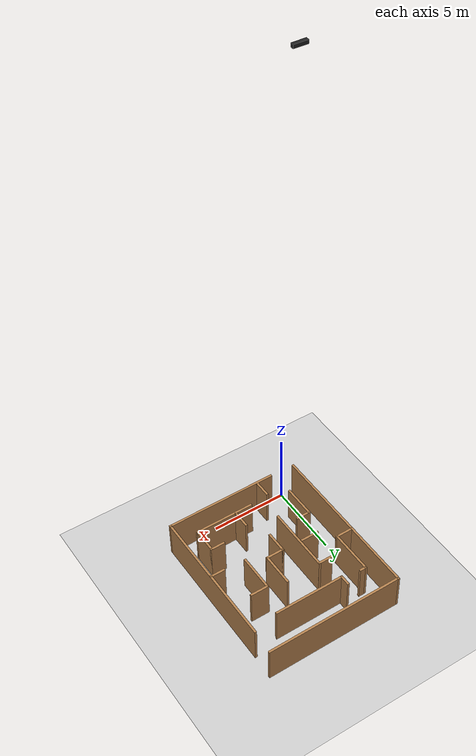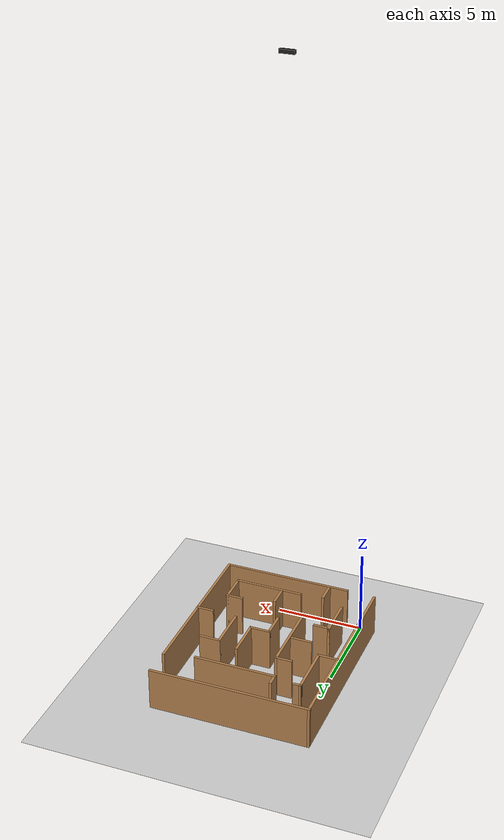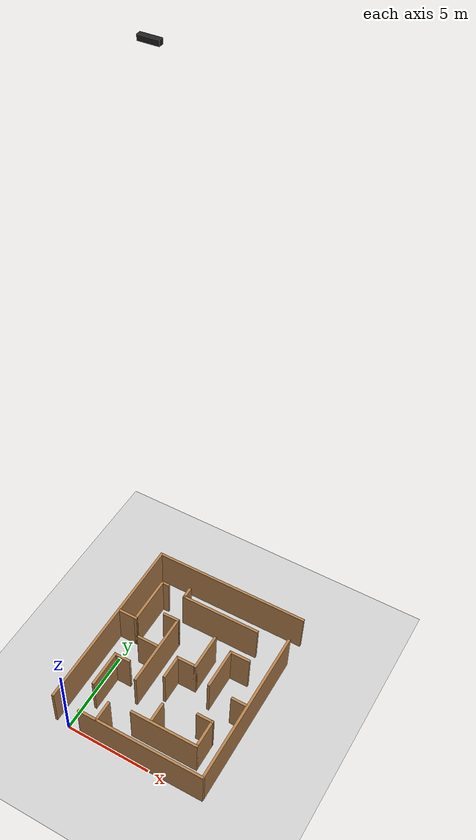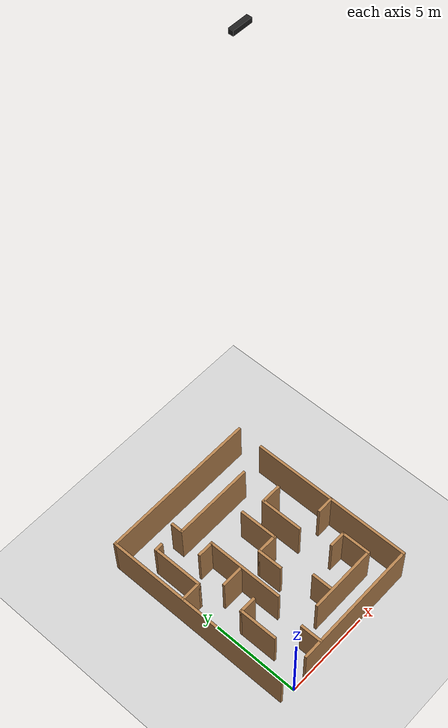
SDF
<sdf version="1.7">
 <world name="default">
  <light name="sun" type="directional">
   <pose>0 0 10 0 -0 0</pose>
   <diffuse>0.8 0.8 0.8 1</diffuse>
   <specular>0.2 0.2 0.2 1</specular>
   <attenuation>
    <range>1000</range>
    <constant>0.9</constant>
    <linear>0.01</linear>
    <quadratic>0.001</quadratic>
   </attenuation>
   <direction>-0.5 0.1 -0.9</direction>
   <spot><inner_angle>0</inner_angle><outer_angle>0</outer_angle><falloff>0</falloff></spot>
  </light>
  <model name="ground_plane">
   <static>1</static>
   <link name="link">
    <collision name="collision">
     <geometry><plane><normal>0 0 1</normal><size>100 100</size></plane></geometry>
     <surface><friction><ode><mu>100</mu><mu2>50</mu2></ode></friction></surface>
    </collision>
    <visual name="visual">
     <cast_shadows>0</cast_shadows>
     <geometry><plane><normal>0 0 1</normal><size>100 100</size></plane></geometry>
     <material>
      <script><uri>file://media/materials/scripts/gazebo.material</uri><name>Gazebo/Grey</name></script>
     </material>
    </visual>
   </link>
  </model>
  <gravity>0 0 -9.8</gravity>
  <magnetic_field>6e-06 2.3e-05 -4.2e-05</magnetic_field>
  <atmosphere type="adiabatic"/>
  <physics type="ode">
   <max_step_size>0.001</max_step_size>
   <real_time_factor>1</real_time_factor>
   <real_time_update_rate>1000</real_time_update_rate>
  </physics>
  <scene><ambient>0.4 0.4 0.4 1</ambient><background>0.7 0.7 0.7 1</background><shadows>1</shadows></scene>
  <spherical_coordinates>
   <surface_model>EARTH_WGS84</surface_model>
   <latitude_deg>0</latitude_deg>
   <longitude_deg>0</longitude_deg>
   <elevation>0</elevation>
   <heading_deg>0</heading_deg>
  </spherical_coordinates>
  <model name="obstacle_course_4">
   <pose>3.70375 5.52729 0 0 -0 1.57437</pose>
   <link name="Wall_0">
    <collision name="Wall_0_Collision">
     <geometry><box><size>7.5 0.15 2.5</size></box></geometry>
     <pose>0 0 1.25 0 -0 0</pose>
    </collision>
    <visual name="Wall_0_Visual">
     <pose>0 0 1.25 0 -0 0</pose>
     <geometry><box><size>7.5 0.15 2.5</size></box></geometry>
     <material>
      <script><uri>file://media/materials/scripts/gazebo.material</uri><name>Gazebo/Wood</name></script>
      <ambient>0.807843 0.360784 0 1</ambient>
     </material>
     <meta><layer>0</layer></meta>
    </visual>
    <pose>-5.47439 -0.809214 0 0 -0 -1.5708</pose>
   </link>
   <link name="Wall_1">
    <collision name="Wall_1_Collision">
     <geometry><box><size>9.5 0.15 2.5</size></box></geometry>
     <pose>0 0 1.25 0 -0 0</pose>
    </collision>
    <visual name="Wall_1_Visual">
     <pose>0 0 1.25 0 -0 0</pose>
     <geometry><box><size>9.5 0.15 2.5</size></box></geometry>
     <material>
      <script><uri>file://media/materials/scripts/gazebo.material</uri><name>Gazebo/Wood</name></script>
      <ambient>0.996078 0.47451 0.0196078 1</ambient>
     </material>
     <meta><layer>0</layer></meta>
    </visual>
    <pose>-0.79939 -4.48421 0 0 -0 0</pose>
   </link>
   <link name="Wall_15">
    <collision name="Wall_15_Collision">
     <geometry><box><size>4 0.15 2.5</size></box></geometry>
     <pose>0 0 1.25 0 -0 0</pose>
    </collision>
    <visual name="Wall_15_Visual">
     <pose>0 0 1.25 0 -0 0</pose>
     <geometry><box><size>4 0.15 2.5</size></box></geometry>
     <material>
      <script><uri>file://media/materials/scripts/gazebo.material</uri><name>Gazebo/Wood</name></script>
      <ambient>0.807843 0.360784 0 1</ambient>
     </material>
     <meta><layer>0</layer></meta>
    </visual>
    <pose>-4.14515 -1.43786 0 0 -0 -1.5708</pose>
   </link>
   <link name="Wall_16">
    <collision name="Wall_16_Collision">
     <geometry><box><size>1.75 0.15 2.5</size></box></geometry>
     <pose>0 0 1.25 0 -0 0</pose>
    </collision>
    <visual name="Wall_16_Visual">
     <pose>0 0 1.25 0 -0 0</pose>
     <geometry><box><size>1.75 0.15 2.5</size></box></geometry>
     <material>
      <script><uri>file://media/materials/scripts/gazebo.material</uri><name>Gazebo/Wood</name></script>
      <ambient>0.996078 0.47451 0.0196078 1</ambient>
     </material>
     <meta><layer>0</layer></meta>
    </visual>
    <pose>-3.34515 -3.36286 0 0 -0 0</pose>
   </link>
   <link name="Wall_17">
    <collision name="Wall_17_Collision">
     <geometry><box><size>1 0.15 2.5</size></box></geometry>
     <pose>0 0 1.25 0 -0 0</pose>
    </collision>
    <visual name="Wall_17_Visual">
     <pose>0 0 1.25 0 -0 0</pose>
     <geometry><box><size>1 0.15 2.5</size></box></geometry>
     <material>
      <script><uri>file://media/materials/scripts/gazebo.material</uri><name>Gazebo/Wood</name></script>
      <ambient>0.996078 0.47451 0.0196078 1</ambient>
     </material>
     <meta><layer>0</layer></meta>
    </visual>
    <pose>-2.54515 -2.93786 0 0 -0 1.5708</pose>
   </link>
   <link name="Wall_19">
    <collision name="Wall_19_Collision">
     <geometry><box><size>2.5 0.15 2.5</size></box></geometry>
     <pose>0 0 1.25 0 -0 0</pose>
    </collision>
    <visual name="Wall_19_Visual">
     <pose>0 0 1.25 0 -0 0</pose>
     <geometry><box><size>2.5 0.15 2.5</size></box></geometry>
     <material>
      <script><uri>file://media/materials/scripts/gazebo.material</uri><name>Gazebo/Wood</name></script>
      <ambient>0.996078 0.47451 0.0196078 1</ambient>
     </material>
     <meta><layer>0</layer></meta>
    </visual>
    <pose>0.457907 -2.13637 0 0 -0 0</pose>
   </link>
   <link name="Wall_20">
    <collision name="Wall_20_Collision">
     <geometry><box><size>1.25 0.15 2.5</size></box></geometry>
     <pose>0 0 1.25 0 -0 0</pose>
    </collision>
    <visual name="Wall_20_Visual">
     <pose>0 0 1.25 0 -0 0</pose>
     <geometry><box><size>1.25 0.15 2.5</size></box></geometry>
     <material>
      <script><uri>file://media/materials/scripts/gazebo.material</uri><name>Gazebo/Wood</name></script>
      <ambient>0.996078 0.47451 0.0196078 1</ambient>
     </material>
     <meta><layer>0</layer></meta>
    </visual>
    <pose>1.63291 -2.68637 0 0 -0 -1.5708</pose>
   </link>
   <link name="Wall_22">
    <collision name="Wall_22_Collision">
     <geometry><box><size>4.5 0.15 2.5</size></box></geometry>
     <pose>0 0 1.25 0 -0 0</pose>
    </collision>
    <visual name="Wall_22_Visual">
     <pose>0 0 1.25 0 -0 0</pose>
     <geometry><box><size>4.5 0.15 2.5</size></box></geometry>
     <material>
      <script><uri>file://media/materials/scripts/gazebo.material</uri><name>Gazebo/Wood</name></script>
      <ambient>0.996078 0.47451 0.0196078 1</ambient>
     </material>
     <meta><layer>0</layer></meta>
    </visual>
    <pose>-0.221138 1.36164 0 0 -0 0</pose>
   </link>
   <link name="Wall_23">
    <collision name="Wall_23_Collision">
     <geometry><box><size>1 0.15 2.5</size></box></geometry>
     <pose>0 0 1.25 0 -0 0</pose>
    </collision>
    <visual name="Wall_23_Visual">
     <pose>0 0 1.25 0 -0 0</pose>
     <geometry><box><size>1 0.15 2.5</size></box></geometry>
     <material>
      <script><uri>file://media/materials/scripts/gazebo.material</uri><name>Gazebo/Wood</name></script>
      <ambient>0.996078 0.47451 0.0196078 1</ambient>
     </material>
     <meta><layer>0</layer></meta>
    </visual>
    <pose>1.95386 1.78664 0 0 -0 1.5708</pose>
   </link>
   <link name="Wall_25">
    <collision name="Wall_25_Collision">
     <geometry><box><size>1.25 0.15 2.5</size></box></geometry>
     <pose>0 0 1.25 0 -0 0</pose>
    </collision>
    <visual name="Wall_25_Visual">
     <pose>0 0 1.25 0 -0 0</pose>
     <geometry><box><size>1.25 0.15 2.5</size></box></geometry>
     <material>
      <script><uri>file://media/materials/scripts/gazebo.material</uri><name>Gazebo/Wood</name></script>
      <ambient>0.807843 0.360784 0 1</ambient>
     </material>
     <meta><layer>0</layer></meta>
    </visual>
    <pose>-4.88941 1.81638 0 0 -0 0</pose>
   </link>
   <link name="Wall_3">
    <collision name="Wall_3_Collision">
     <geometry><box><size>9.25 0.15 2.5</size></box></geometry>
     <pose>0 0 1.25 0 -0 0</pose>
    </collision>
    <visual name="Wall_3_Visual">
     <pose>0 0 1.25 0 -0 0</pose>
     <geometry><box><size>9.25 0.15 2.5</size></box></geometry>
     <material>
      <script><uri>file://media/materials/scripts/gazebo.material</uri><name>Gazebo/Wood</name></script>
      <ambient>0.807843 0.360784 0 1</ambient>
     </material>
     <meta><layer>0</layer></meta>
    </visual>
    <pose>5.47439 0 0 0 -0 1.5708</pose>
   </link>
   <link name="Wall_35">
    <collision name="Wall_35_Collision">
     <geometry><box><size>1 0.15 2.5</size></box></geometry>
     <pose>0 0 1.25 0 -0 0</pose>
    </collision>
    <visual name="Wall_35_Visual">
     <pose>0 0 1.25 0 -0 0</pose>
     <geometry><box><size>1 0.15 2.5</size></box></geometry>
     <material>
      <script><uri>file://media/materials/scripts/gazebo.material</uri><name>Gazebo/Wood</name></script>
      <ambient>0.996078 0.47451 0.0196078 1</ambient>
     </material>
     <meta><layer>0</layer></meta>
    </visual>
    <pose>-0.822033 -4.02006 0 0 -0 1.5708</pose>
   </link>
   <link name="Wall_4">
    <collision name="Wall_4_Collision">
     <geometry><box><size>11 0.15 2.5</size></box></geometry>
     <pose>0 0 1.25 0 -0 0</pose>
    </collision>
    <visual name="Wall_4_Visual">
     <pose>0 0 1.25 0 -0 0</pose>
     <geometry><box><size>11 0.15 2.5</size></box></geometry>
     <material>
      <script><uri>file://media/materials/scripts/gazebo.material</uri><name>Gazebo/Wood</name></script>
      <ambient>0.807843 0.360784 0 1</ambient>
     </material>
     <meta><layer>0</layer></meta>
    </visual>
    <pose>0.049389 4.55 0 0 -0 3.14159</pose>
   </link>
   <link name="Wall_44">
    <collision name="Wall_44_Collision">
     <geometry><box><size>2.25 0.15 2.5</size></box></geometry>
     <pose>0 0 1.25 0 -0 0</pose>
    </collision>
    <visual name="Wall_44_Visual">
     <pose>0 0 1.25 0 -0 0</pose>
     <geometry><box><size>2.25 0.15 2.5</size></box></geometry>
     <material>
      <script><uri>file://media/materials/scripts/gazebo.material</uri><name>Gazebo/Wood</name></script>
      <ambient>0.996078 0.47451 0.0196078 1</ambient>
     </material>
     <meta><layer>0</layer></meta>
    </visual>
    <pose>-2.67538 3.13515 0 0 -0 0</pose>
   </link>
   <link name="Wall_45">
    <collision name="Wall_45_Collision">
     <geometry><box><size>1 0.15 2.5</size></box></geometry>
     <pose>0 0 1.25 0 -0 0</pose>
    </collision>
    <visual name="Wall_45_Visual">
     <pose>0 0 1.25 0 -0 0</pose>
     <geometry><box><size>1 0.15 2.5</size></box></geometry>
     <material>
      <script><uri>file://media/materials/scripts/gazebo.material</uri><name>Gazebo/Wood</name></script>
      <ambient>0.996078 0.47451 0.0196078 1</ambient>
     </material>
     <meta><layer>0</layer></meta>
    </visual>
    <pose>-1.62538 2.71015 0 0 -0 -1.5708</pose>
   </link>
   <link name="Wall_53">
    <collision name="Wall_53_Collision">
     <geometry><box><size>1.25 0.15 2.5</size></box></geometry>
     <pose>0 0 1.25 0 -0 0</pose>
    </collision>
    <visual name="Wall_53_Visual">
     <pose>0 0 1.25 0 -0 0</pose>
     <geometry><box><size>1.25 0.15 2.5</size></box></geometry>
     <material>
      <script><uri>file://media/materials/scripts/gazebo.material</uri><name>Gazebo/Wood</name></script>
      <ambient>0.996078 0.47451 0.0196078 1</ambient>
     </material>
     <meta><layer>0</layer></meta>
    </visual>
    <pose>-3.52519 -0.632226 0 0 -0 0</pose>
   </link>
   <link name="Wall_59">
    <collision name="Wall_59_Collision">
     <geometry><box><size>1.25 0.15 2.5</size></box></geometry>
     <pose>0 0 1.25 0 -0 0</pose>
    </collision>
    <visual name="Wall_59_Visual">
     <pose>0 0 1.25 0 -0 0</pose>
     <geometry><box><size>1.25 0.15 2.5</size></box></geometry>
     <material>
      <script><uri>file://media/materials/scripts/gazebo.material</uri><name>Gazebo/Wood</name></script>
      <ambient>0.807843 0.360784 0 1</ambient>
     </material>
     <meta><layer>0</layer></meta>
    </visual>
    <pose>0.907563 3.98814 0 0 -0 -1.5708</pose>
   </link>
   <link name="Wall_6">
    <collision name="Wall_6_Collision">
     <geometry><box><size>4.75 0.15 2.5</size></box></geometry>
     <pose>0 0 1.25 0 -0 0</pose>
    </collision>
    <visual name="Wall_6_Visual">
     <pose>0 0 1.25 0 -0 0</pose>
     <geometry><box><size>4.75 0.15 2.5</size></box></geometry>
     <material>
      <script><uri>file://media/materials/scripts/gazebo.material</uri><name>Gazebo/Wood</name></script>
      <ambient>0.996078 0.47451 0.0196078 1</ambient>
     </material>
     <meta><layer>0</layer></meta>
    </visual>
    <pose>3.5155 -0.431034 0 0 -0 1.5708</pose>
   </link>
   <link name="Wall_60">
    <collision name="Wall_60_Collision">
     <geometry><box><size>3 0.15 2.5</size></box></geometry>
     <pose>0 0 1.25 0 -0 0</pose>
    </collision>
    <visual name="Wall_60_Visual">
     <pose>0 0 1.25 0 -0 0</pose>
     <geometry><box><size>3 0.15 2.5</size></box></geometry>
     <material>
      <script><uri>file://media/materials/scripts/gazebo.material</uri><name>Gazebo/Wood</name></script>
      <ambient>0.996078 0.47451 0.0196078 1</ambient>
     </material>
     <meta><layer>0</layer></meta>
    </visual>
    <pose>2.33256 3.43814 0 0 -0 0</pose>
   </link>
   <link name="Wall_61">
    <collision name="Wall_61_Collision">
     <geometry><box><size>0.5 0.15 2.5</size></box></geometry>
     <pose>0 0 1.25 0 -0 0</pose>
    </collision>
    <visual name="Wall_61_Visual">
     <pose>0 0 1.25 0 -0 0</pose>
     <geometry><box><size>0.5 0.15 2.5</size></box></geometry>
     <material>
      <script><uri>file://media/materials/scripts/gazebo.material</uri><name>Gazebo/Wood</name></script>
      <ambient>0.996078 0.47451 0.0196078 1</ambient>
     </material>
     <meta><layer>0</layer></meta>
    </visual>
    <pose>3.75756 3.26314 0 0 -0 -1.5708</pose>
   </link>
   <link name="Wall_67">
    <collision name="Wall_67_Collision">
     <geometry><box><size>1.25 0.15 2.5</size></box></geometry>
     <pose>0 0 1.25 0 -0 0</pose>
    </collision>
    <visual name="Wall_67_Visual">
     <pose>0 0 1.25 0 -0 0</pose>
     <geometry><box><size>1.25 0.15 2.5</size></box></geometry>
     <material>
      <script><uri>file://media/materials/scripts/gazebo.material</uri><name>Gazebo/Wood</name></script>
      <ambient>0.996078 0.47451 0.0196078 1</ambient>
     </material>
     <meta><layer>0</layer></meta>
    </visual>
    <pose>-0.050044 2.07345 0 0 -0 1.5708</pose>
   </link>
   <link name="Wall_7">
    <collision name="Wall_7_Collision">
     <geometry><box><size>0.75 0.15 2.5</size></box></geometry>
     <pose>0 0 1.25 0 -0 0</pose>
    </collision>
    <visual name="Wall_7_Visual">
     <pose>0 0 1.25 0 -0 0</pose>
     <geometry><box><size>0.75 0.15 2.5</size></box></geometry>
     <material>
      <script><uri>file://media/materials/scripts/gazebo.material</uri><name>Gazebo/Wood</name></script>
      <ambient>0.996078 0.47451 0.0196078 1</ambient>
     </material>
     <meta><layer>0</layer></meta>
    </visual>
    <pose>3.8155 1.86897 0 0 -0 0</pose>
   </link>
   <link name="Wall_70">
    <collision name="Wall_70_Collision">
     <geometry><box><size>1.5 0.15 2.5</size></box></geometry>
     <pose>0 0 1.25 0 -0 0</pose>
    </collision>
    <visual name="Wall_70_Visual">
     <pose>0 0 1.25 0 -0 0</pose>
     <geometry><box><size>1.5 0.15 2.5</size></box></geometry>
     <material>
      <script><uri>file://media/materials/scripts/gazebo.material</uri><name>Gazebo/Wood</name></script>
      <ambient>0.996078 0.47451 0.0196078 1</ambient>
     </material>
     <meta><layer>0</layer></meta>
    </visual>
    <pose>-0.793722 0.140242 0 0 -0 0</pose>
   </link>
   <link name="Wall_71">
    <collision name="Wall_71_Collision">
     <geometry><box><size>1.25 0.15 2.5</size></box></geometry>
     <pose>0 0 1.25 0 -0 0</pose>
    </collision>
    <visual name="Wall_71_Visual">
     <pose>0 0 1.25 0 -0 0</pose>
     <geometry><box><size>1.25 0.15 2.5</size></box></geometry>
     <material>
      <script><uri>file://media/materials/scripts/gazebo.material</uri><name>Gazebo/Wood</name></script>
      <ambient>0.996078 0.47451 0.0196078 1</ambient>
     </material>
     <meta><layer>0</layer></meta>
    </visual>
    <pose>-0.118722 -0.409758 0 0 -0 -1.5708</pose>
   </link>
   <link name="Wall_72">
    <collision name="Wall_72_Collision">
     <geometry><box><size>2.25 0.15 2.5</size></box></geometry>
     <pose>0 0 1.25 0 -0 0</pose>
    </collision>
    <visual name="Wall_72_Visual">
     <pose>0 0 1.25 0 -0 0</pose>
     <geometry><box><size>2.25 0.15 2.5</size></box></geometry>
     <material>
      <script><uri>file://media/materials/scripts/gazebo.material</uri><name>Gazebo/Wood</name></script>
      <ambient>0.996078 0.47451 0.0196078 1</ambient>
     </material>
     <meta><layer>0</layer></meta>
    </visual>
    <pose>0.931278 -0.959758 0 0 -0 0</pose>
   </link>
   <static>1</static>
  </model>
  <model name="overhead_camera">
   <link name="link_0">
    <inertial>
     <mass>1</mass>
     <inertia>
      <ixx>0.166667</ixx>
      <ixy>0</ixy>
      <ixz>0</ixz>
      <iyy>0.166667</iyy>
      <iyz>0</iyz>
      <izz>0.166667</izz>
     </inertia>
    </inertial>
    <pose>0 2e-06 4.4e-05 0 -0 0</pose>
    <visual name="visual">
     <geometry><box><size>0.8 0.2 0.2</size></box></geometry>
     <material>
      <lighting>1</lighting>
      <script><uri>file://media/materials/scripts/gazebo.material</uri><name>Gazebo/Black</name></script>
      <shader type="pixel"><normal_map>__default__</normal_map></shader>
      <ambient>0.3 0.3 0.3 1</ambient>
      <diffuse>0.7 0.7 0.7 1</diffuse>
      <specular>0.01 0.01 0.01 1</specular>
      <emissive>0 0 0 1</emissive>
     </material>
     <cast_shadows>0</cast_shadows>
    </visual>
    <collision name="collision">
     <geometry><box><size>0.8 0.2 0.2</size></box></geometry>
     <surface>
      <friction>
       <ode><mu>1</mu><mu2>1</mu2><fdir1>0 0 0</fdir1><slip1>0</slip1><slip2>0</slip2></ode>
       <torsional>
        <coefficient>1</coefficient>
        <patch_radius>0</patch_radius>
        <surface_radius>0</surface_radius>
        <use_patch_radius>1</use_patch_radius>
        <ode><slip>0</slip></ode>
       </torsional>
      </friction>
      <bounce><restitution_coefficient>0</restitution_coefficient><threshold>1e+06</threshold></bounce>
      <contact>
       <collide_without_contact>0</collide_without_contact>
       <collide_without_contact_bitmask>1</collide_without_contact_bitmask>
       <collide_bitmask>1</collide_bitmask>
       <ode>
        <soft_cfm>0</soft_cfm>
        <soft_erp>0.2</soft_erp>
        <kp>1e+13</kp>
        <kd>1</kd>
        <max_vel>0.01</max_vel>
        <min_depth>0</min_depth>
       </ode>
       <bullet>
        <split_impulse>1</split_impulse>
        <split_impulse_penetration_threshold>-0.01</split_impulse_penetration_threshold>
        <soft_cfm>0</soft_cfm>
        <soft_erp>0.2</soft_erp>
        <kp>1e+13</kp>
        <kd>1</kd>
       </bullet>
      </contact>
     </surface>
    </collision>
    <sensor name="upper_camera" type="camera">
     <pose>0 0 0 0 1.57 0</pose>
     <update_rate>30</update_rate>
     <visualize>1</visualize>
     <camera name="head">
      <horizontal_fov>1.0856</horizontal_fov>
      <image><width>1280</width><height>720</height><format>R8G8B8</format></image>
      <clip><near>0.03</near><far>100</far></clip>
      <noise><type>gaussian</type><mean>0</mean><stddev>0.007</stddev></noise>
     </camera>
     <plugin name="camera_controller" filename="libgazebo_ros_camera.so">
      <alwaysOn>1</alwaysOn>
      <updateRate>0.0</updateRate>
      <cameraName>rrbot/upper_camera</cameraName>
      <imageTopicName>image_raw</imageTopicName>
      <cameraInfoTopicName>camera_info</cameraInfoTopicName>
      <frameName>camera_link</frameName>
      <hackBaseline>0.07</hackBaseline>
      <distortionK1>0.0</distortionK1>
      <distortionK2>0.0</distortionK2>
      <distortionK3>0.0</distortionK3>
      <distortionT1>0.0</distortionT1>
      <distortionT2>0.0</distortionT2>
     </plugin>
    </sensor>
   </link>
   <static>1</static>
   <pose>2.7 5.4 35.4 0 -0 0</pose>
  </model>
 </world>
</sdf>
